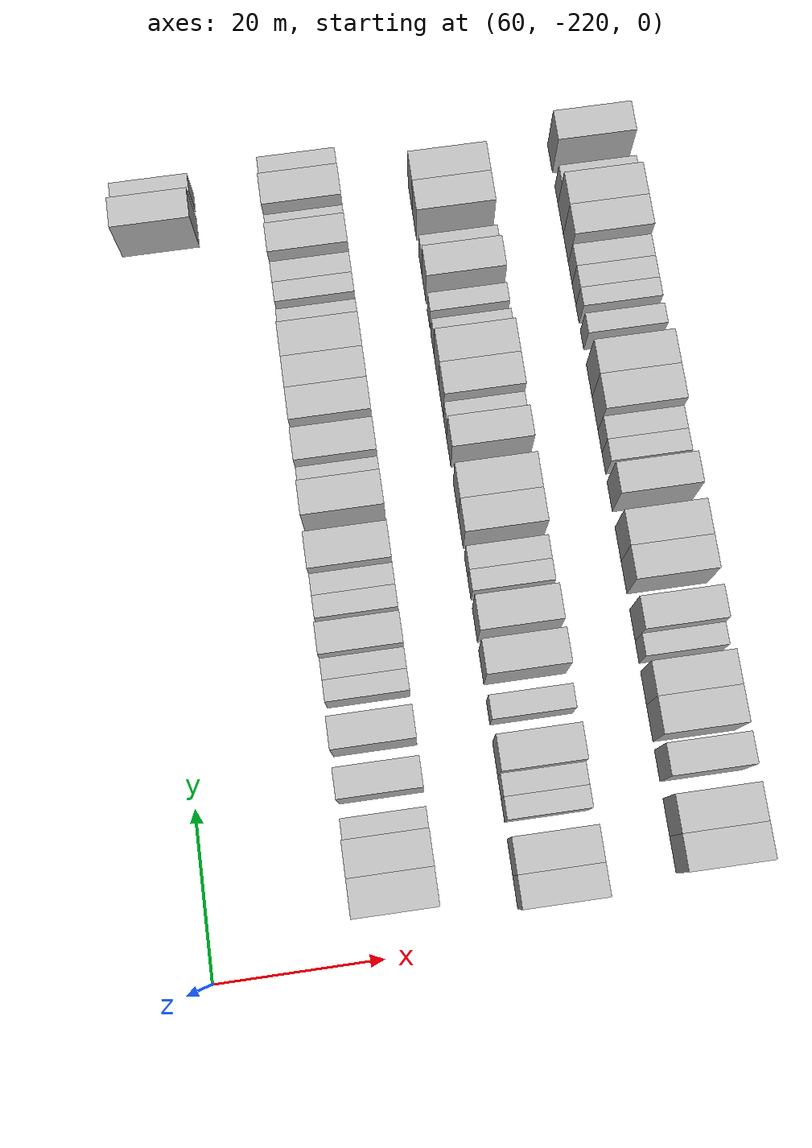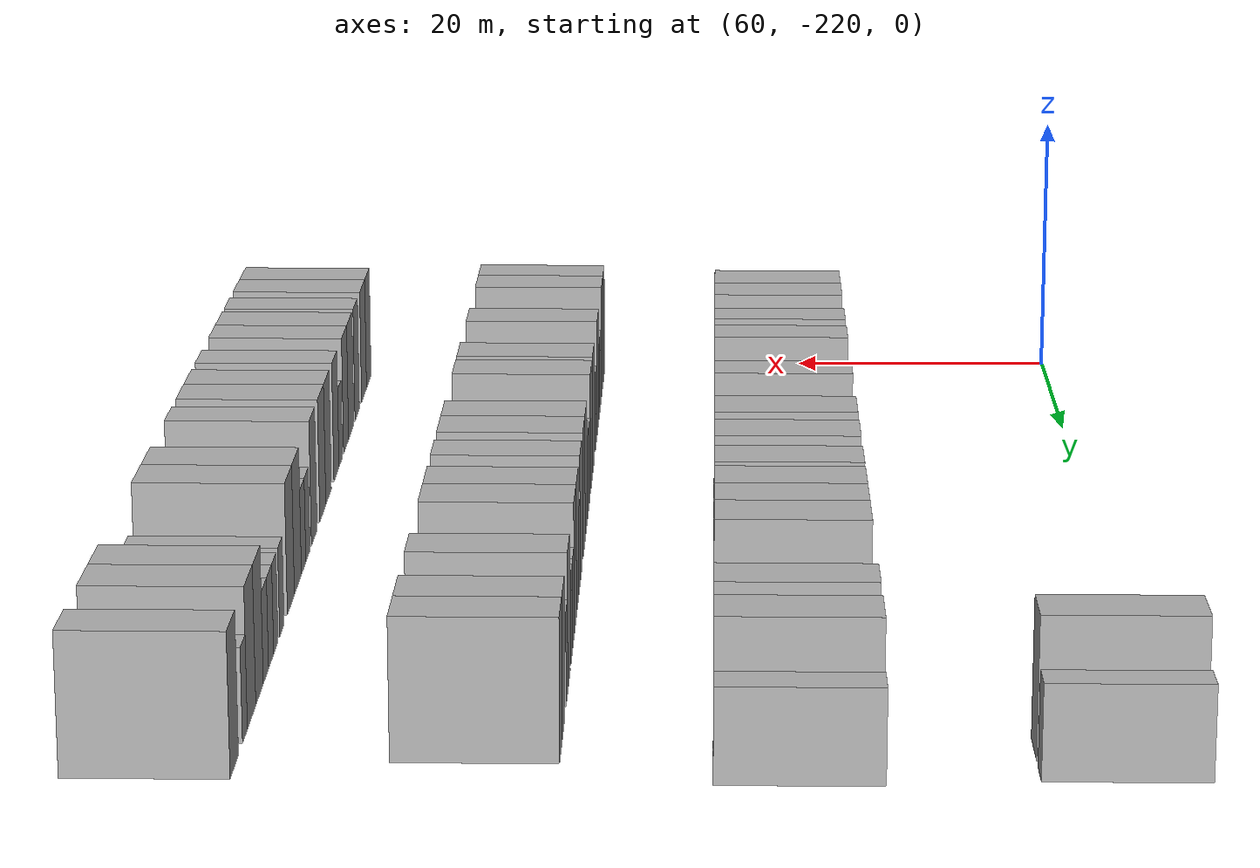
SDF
<sdf version="1.6">
 <world name="default">
  <model name="building_406">
   <static>1</static>
   <pose>63.0000 -126.7077 0 0.000000 0.000000 0.000000</pose>
   <link name="link">
    <pose>0 0 4.50 0 0 0</pose>
    <collision name="collision"><geometry><box><size>10.0000 4.0120 9.0000</size></box></geometry></collision>
    <visual name="visual">
     <cast_shadows>0</cast_shadows>
     <geometry><box><size>10.0000 4.0120 9.0000</size></box></geometry>
     <material>
      <script>
       <uri>model://HANNAS_wall/materials/scripts</uri>
       <uri>model://HANNAS_wall/materials/textures</uri>
       <name>vrc/HANNAS_wall</name>
      </script>
     </material>
    </visual>
   </link>
  </model>
  <model name="building_407">
   <static>1</static>
   <pose>63.0000 -122.4582 0 0.000000 0.000000 0.000000</pose>
   <link name="link">
    <pose>0 0 3.00 0 0 0</pose>
    <collision name="collision"><geometry><box><size>10.0000 2.4870 6.0000</size></box></geometry></collision>
    <visual name="visual">
     <cast_shadows>0</cast_shadows>
     <geometry><box><size>10.0000 2.4870 6.0000</size></box></geometry>
     <material>
      <script>
       <uri>model://HANNAS_wall/materials/scripts</uri>
       <uri>model://HANNAS_wall/materials/textures</uri>
       <name>vrc/HANNAS_wall</name>
      </script>
     </material>
    </visual>
   </link>
  </model>
  <model name="building_562">
   <static>1</static>
   <pose>82.0000 -212.7200 0 0.000000 0.000000 0.000000</pose>
   <link name="link">
    <pose>0 0 4.50 0 0 0</pose>
    <collision name="collision"><geometry><box><size>10.0000 4.4209 9.0000</size></box></geometry></collision>
    <visual name="visual">
     <cast_shadows>0</cast_shadows>
     <geometry><box><size>10.0000 4.4209 9.0000</size></box></geometry>
     <material>
      <script>
       <uri>model://HANNAS_wall/materials/scripts</uri>
       <uri>model://HANNAS_wall/materials/textures</uri>
       <name>vrc/HANNAS_wall</name>
      </script>
     </material>
    </visual>
   </link>
  </model>
  <model name="building_563">
   <static>1</static>
   <pose>82.0000 -208.3890 0 0.000000 0.000000 0.000000</pose>
   <link name="link">
    <pose>0 0 4.50 0 0 0</pose>
    <collision name="collision"><geometry><box><size>10.0000 4.2413 9.0000</size></box></geometry></collision>
    <visual name="visual">
     <cast_shadows>0</cast_shadows>
     <geometry><box><size>10.0000 4.2413 9.0000</size></box></geometry>
     <material>
      <script>
       <uri>model://HANNAS_wall/materials/scripts</uri>
       <uri>model://HANNAS_wall/materials/textures</uri>
       <name>vrc/HANNAS_wall</name>
      </script>
     </material>
    </visual>
   </link>
  </model>
  <model name="building_564">
   <static>1</static>
   <pose>82.0000 -205.0144 0 0.000000 0.000000 0.000000</pose>
   <link name="link">
    <pose>0 0 3.00 0 0 0</pose>
    <collision name="collision"><geometry><box><size>10.0000 2.5079 6.0000</size></box></geometry></collision>
    <visual name="visual">
     <cast_shadows>0</cast_shadows>
     <geometry><box><size>10.0000 2.5079 6.0000</size></box></geometry>
     <material>
      <script>
       <uri>model://HANNAS_wall/materials/scripts</uri>
       <uri>model://HANNAS_wall/materials/textures</uri>
       <name>vrc/HANNAS_wall</name>
      </script>
     </material>
    </visual>
   </link>
  </model>
  <model name="building_565">
   <static>1</static>
   <pose>82.0000 -199.9602 0 0.000000 0.000000 0.000000</pose>
   <link name="link">
    <pose>0 0 4.50 0 0 0</pose>
    <collision name="collision"><geometry><box><size>10.0000 3.6005 9.0000</size></box></geometry></collision>
    <visual name="visual">
     <cast_shadows>0</cast_shadows>
     <geometry><box><size>10.0000 3.6005 9.0000</size></box></geometry>
     <material>
      <script>
       <uri>model://HANNAS_wall/materials/scripts</uri>
       <uri>model://HANNAS_wall/materials/textures</uri>
       <name>vrc/HANNAS_wall</name>
      </script>
     </material>
    </visual>
   </link>
  </model>
  <model name="building_566">
   <static>1</static>
   <pose>82.0000 -194.2334 0 0.000000 0.000000 0.000000</pose>
   <link name="link">
    <pose>0 0 4.50 0 0 0</pose>
    <collision name="collision"><geometry><box><size>10.0000 3.8530 9.0000</size></box></geometry></collision>
    <visual name="visual">
     <cast_shadows>0</cast_shadows>
     <geometry><box><size>10.0000 3.8530 9.0000</size></box></geometry>
     <material>
      <script>
       <uri>model://HANNAS_wall/materials/scripts</uri>
       <uri>model://HANNAS_wall/materials/textures</uri>
       <name>vrc/HANNAS_wall</name>
      </script>
     </material>
    </visual>
   </link>
  </model>
  <model name="building_567">
   <static>1</static>
   <pose>82.0000 -189.0072 0 0.000000 0.000000 0.000000</pose>
   <link name="link">
    <pose>0 0 3.00 0 0 0</pose>
    <collision name="collision"><geometry><box><size>10.0000 2.5993 6.0000</size></box></geometry></collision>
    <visual name="visual">
     <cast_shadows>0</cast_shadows>
     <geometry><box><size>10.0000 2.5993 6.0000</size></box></geometry>
     <material>
      <script>
       <uri>model://HANNAS_wall/materials/scripts</uri>
       <uri>model://HANNAS_wall/materials/textures</uri>
       <name>vrc/HANNAS_wall</name>
      </script>
     </material>
    </visual>
   </link>
  </model>
  <model name="building_568">
   <static>1</static>
   <pose>82.0000 -186.4210 0 0.000000 0.000000 0.000000</pose>
   <link name="link">
    <pose>0 0 3.00 0 0 0</pose>
    <collision name="collision"><geometry><box><size>10.0000 2.5731 6.0000</size></box></geometry></collision>
    <visual name="visual">
     <cast_shadows>0</cast_shadows>
     <geometry><box><size>10.0000 2.5731 6.0000</size></box></geometry>
     <material>
      <script>
       <uri>model://HANNAS_wall/materials/scripts</uri>
       <uri>model://HANNAS_wall/materials/textures</uri>
       <name>vrc/HANNAS_wall</name>
      </script>
     </material>
    </visual>
   </link>
  </model>
  <model name="building_569">
   <static>1</static>
   <pose>82.0000 -183.2284 0 0.000000 0.000000 0.000000</pose>
   <link name="link">
    <pose>0 0 4.50 0 0 0</pose>
    <collision name="collision"><geometry><box><size>10.0000 3.8121 9.0000</size></box></geometry></collision>
    <visual name="visual">
     <cast_shadows>0</cast_shadows>
     <geometry><box><size>10.0000 3.8121 9.0000</size></box></geometry>
     <material>
      <script>
       <uri>model://HANNAS_wall/materials/scripts</uri>
       <uri>model://HANNAS_wall/materials/textures</uri>
       <name>vrc/HANNAS_wall</name>
      </script>
     </material>
    </visual>
   </link>
  </model>
  <model name="building_570">
   <static>1</static>
   <pose>82.0000 -178.9424 0 0.000000 0.000000 0.000000</pose>
   <link name="link">
    <pose>0 0 3.00 0 0 0</pose>
    <collision name="collision"><geometry><box><size>10.0000 2.7598 6.0000</size></box></geometry></collision>
    <visual name="visual">
     <cast_shadows>0</cast_shadows>
     <geometry><box><size>10.0000 2.7598 6.0000</size></box></geometry>
     <material>
      <script>
       <uri>model://HANNAS_wall/materials/scripts</uri>
       <uri>model://HANNAS_wall/materials/textures</uri>
       <name>vrc/HANNAS_wall</name>
      </script>
     </material>
    </visual>
   </link>
  </model>
  <model name="building_571">
   <static>1</static>
   <pose>82.0000 -176.2389 0 0.000000 0.000000 0.000000</pose>
   <link name="link">
    <pose>0 0 3.00 0 0 0</pose>
    <collision name="collision"><geometry><box><size>10.0000 2.6472 6.0000</size></box></geometry></collision>
    <visual name="visual">
     <cast_shadows>0</cast_shadows>
     <geometry><box><size>10.0000 2.6472 6.0000</size></box></geometry>
     <material>
      <script>
       <uri>model://HANNAS_wall/materials/scripts</uri>
       <uri>model://HANNAS_wall/materials/textures</uri>
       <name>vrc/HANNAS_wall</name>
      </script>
     </material>
    </visual>
   </link>
  </model>
  <model name="building_572">
   <static>1</static>
   <pose>82.0000 -172.6708 0 0.000000 0.000000 0.000000</pose>
   <link name="link">
    <pose>0 0 4.50 0 0 0</pose>
    <collision name="collision"><geometry><box><size>10.0000 4.4890 9.0000</size></box></geometry></collision>
    <visual name="visual">
     <cast_shadows>0</cast_shadows>
     <geometry><box><size>10.0000 4.4890 9.0000</size></box></geometry>
     <material>
      <script>
       <uri>model://HANNAS_wall/materials/scripts</uri>
       <uri>model://HANNAS_wall/materials/textures</uri>
       <name>vrc/HANNAS_wall</name>
      </script>
     </material>
    </visual>
   </link>
  </model>
  <model name="building_573">
   <static>1</static>
   <pose>82.0000 -166.2780 0 0.000000 0.000000 0.000000</pose>
   <link name="link">
    <pose>0 0 4.50 0 0 0</pose>
    <collision name="collision"><geometry><box><size>10.0000 4.2968 9.0000</size></box></geometry></collision>
    <visual name="visual">
     <cast_shadows>0</cast_shadows>
     <geometry><box><size>10.0000 4.2968 9.0000</size></box></geometry>
     <material>
      <script>
       <uri>model://HANNAS_wall/materials/scripts</uri>
       <uri>model://HANNAS_wall/materials/textures</uri>
       <name>vrc/HANNAS_wall</name>
      </script>
     </material>
    </visual>
   </link>
  </model>
  <model name="building_574">
   <static>1</static>
   <pose>82.0000 -162.8849 0 0.000000 0.000000 0.000000</pose>
   <link name="link">
    <pose>0 0 3.00 0 0 0</pose>
    <collision name="collision"><geometry><box><size>10.0000 2.4893 6.0000</size></box></geometry></collision>
    <visual name="visual">
     <cast_shadows>0</cast_shadows>
     <geometry><box><size>10.0000 2.4893 6.0000</size></box></geometry>
     <material>
      <script>
       <uri>model://HANNAS_wall/materials/scripts</uri>
       <uri>model://HANNAS_wall/materials/textures</uri>
       <name>vrc/HANNAS_wall</name>
      </script>
     </material>
    </visual>
   </link>
  </model>
  <model name="building_575">
   <static>1</static>
   <pose>82.0000 -159.5795 0 0.000000 0.000000 0.000000</pose>
   <link name="link">
    <pose>0 0 4.50 0 0 0</pose>
    <collision name="collision"><geometry><box><size>10.0000 4.1216 9.0000</size></box></geometry></collision>
    <visual name="visual">
     <cast_shadows>0</cast_shadows>
     <geometry><box><size>10.0000 4.1216 9.0000</size></box></geometry>
     <material>
      <script>
       <uri>model://HANNAS_wall/materials/scripts</uri>
       <uri>model://HANNAS_wall/materials/textures</uri>
       <name>vrc/HANNAS_wall</name>
      </script>
     </material>
    </visual>
   </link>
  </model>
  <model name="building_576">
   <static>1</static>
   <pose>82.0000 -154.4689 0 0.000000 0.000000 0.000000</pose>
   <link name="link">
    <pose>0 0 4.50 0 0 0</pose>
    <collision name="collision"><geometry><box><size>10.0000 4.0996 9.0000</size></box></geometry></collision>
    <visual name="visual">
     <cast_shadows>0</cast_shadows>
     <geometry><box><size>10.0000 4.0996 9.0000</size></box></geometry>
     <material>
      <script>
       <uri>model://HANNAS_wall/materials/scripts</uri>
       <uri>model://HANNAS_wall/materials/textures</uri>
       <name>vrc/HANNAS_wall</name>
      </script>
     </material>
    </visual>
   </link>
  </model>
  <model name="building_577">
   <static>1</static>
   <pose>82.0000 -150.4197 0 0.000000 0.000000 0.000000</pose>
   <link name="link">
    <pose>0 0 4.50 0 0 0</pose>
    <collision name="collision"><geometry><box><size>10.0000 3.9988 9.0000</size></box></geometry></collision>
    <visual name="visual">
     <cast_shadows>0</cast_shadows>
     <geometry><box><size>10.0000 3.9988 9.0000</size></box></geometry>
     <material>
      <script>
       <uri>model://HANNAS_wall/materials/scripts</uri>
       <uri>model://HANNAS_wall/materials/textures</uri>
       <name>vrc/HANNAS_wall</name>
      </script>
     </material>
    </visual>
   </link>
  </model>
  <model name="building_578">
   <static>1</static>
   <pose>82.0000 -146.1951 0 0.000000 0.000000 0.000000</pose>
   <link name="link">
    <pose>0 0 4.50 0 0 0</pose>
    <collision name="collision"><geometry><box><size>10.0000 4.4504 9.0000</size></box></geometry></collision>
    <visual name="visual">
     <cast_shadows>0</cast_shadows>
     <geometry><box><size>10.0000 4.4504 9.0000</size></box></geometry>
     <material>
      <script>
       <uri>model://HANNAS_wall/materials/scripts</uri>
       <uri>model://HANNAS_wall/materials/textures</uri>
       <name>vrc/HANNAS_wall</name>
      </script>
     </material>
    </visual>
   </link>
  </model>
  <model name="building_579">
   <static>1</static>
   <pose>82.0000 -142.5242 0 0.000000 0.000000 0.000000</pose>
   <link name="link">
    <pose>0 0 3.00 0 0 0</pose>
    <collision name="collision"><geometry><box><size>10.0000 2.8914 6.0000</size></box></geometry></collision>
    <visual name="visual">
     <cast_shadows>0</cast_shadows>
     <geometry><box><size>10.0000 2.8914 6.0000</size></box></geometry>
     <material>
      <script>
       <uri>model://HANNAS_wall/materials/scripts</uri>
       <uri>model://HANNAS_wall/materials/textures</uri>
       <name>vrc/HANNAS_wall</name>
      </script>
     </material>
    </visual>
   </link>
  </model>
  <model name="building_580">
   <static>1</static>
   <pose>82.0000 -138.7613 0 0.000000 0.000000 0.000000</pose>
   <link name="link">
    <pose>0 0 3.00 0 0 0</pose>
    <collision name="collision"><geometry><box><size>10.0000 2.6344 6.0000</size></box></geometry></collision>
    <visual name="visual">
     <cast_shadows>0</cast_shadows>
     <geometry><box><size>10.0000 2.6344 6.0000</size></box></geometry>
     <material>
      <script>
       <uri>model://HANNAS_wall/materials/scripts</uri>
       <uri>model://HANNAS_wall/materials/textures</uri>
       <name>vrc/HANNAS_wall</name>
      </script>
     </material>
    </visual>
   </link>
  </model>
  <model name="building_581">
   <static>1</static>
   <pose>82.0000 -136.0694 0 0.000000 0.000000 0.000000</pose>
   <link name="link">
    <pose>0 0 3.00 0 0 0</pose>
    <collision name="collision"><geometry><box><size>10.0000 2.7492 6.0000</size></box></geometry></collision>
    <visual name="visual">
     <cast_shadows>0</cast_shadows>
     <geometry><box><size>10.0000 2.7492 6.0000</size></box></geometry>
     <material>
      <script>
       <uri>model://HANNAS_wall/materials/scripts</uri>
       <uri>model://HANNAS_wall/materials/textures</uri>
       <name>vrc/HANNAS_wall</name>
      </script>
     </material>
    </visual>
   </link>
  </model>
  <model name="building_582">
   <static>1</static>
   <pose>82.0000 -132.7564 0 0.000000 0.000000 0.000000</pose>
   <link name="link">
    <pose>0 0 4.50 0 0 0</pose>
    <collision name="collision"><geometry><box><size>10.0000 3.8770 9.0000</size></box></geometry></collision>
    <visual name="visual">
     <cast_shadows>0</cast_shadows>
     <geometry><box><size>10.0000 3.8770 9.0000</size></box></geometry>
     <material>
      <script>
       <uri>model://HANNAS_wall/materials/scripts</uri>
       <uri>model://HANNAS_wall/materials/textures</uri>
       <name>vrc/HANNAS_wall</name>
      </script>
     </material>
    </visual>
   </link>
  </model>
  <model name="building_583">
   <static>1</static>
   <pose>82.0000 -129.5489 0 0.000000 0.000000 0.000000</pose>
   <link name="link">
    <pose>0 0 3.00 0 0 0</pose>
    <collision name="collision"><geometry><box><size>10.0000 2.5381 6.0000</size></box></geometry></collision>
    <visual name="visual">
     <cast_shadows>0</cast_shadows>
     <geometry><box><size>10.0000 2.5381 6.0000</size></box></geometry>
     <material>
      <script>
       <uri>model://HANNAS_wall/materials/scripts</uri>
       <uri>model://HANNAS_wall/materials/textures</uri>
       <name>vrc/HANNAS_wall</name>
      </script>
     </material>
    </visual>
   </link>
  </model>
  <model name="building_584">
   <static>1</static>
   <pose>82.0000 -126.1622 0 0.000000 0.000000 0.000000</pose>
   <link name="link">
    <pose>0 0 4.50 0 0 0</pose>
    <collision name="collision"><geometry><box><size>10.0000 4.2352 9.0000</size></box></geometry></collision>
    <visual name="visual">
     <cast_shadows>0</cast_shadows>
     <geometry><box><size>10.0000 4.2352 9.0000</size></box></geometry>
     <material>
      <script>
       <uri>model://HANNAS_wall/materials/scripts</uri>
       <uri>model://HANNAS_wall/materials/textures</uri>
       <name>vrc/HANNAS_wall</name>
      </script>
     </material>
    </visual>
   </link>
  </model>
  <model name="building_585">
   <static>1</static>
   <pose>82.0000 -121.6446 0 0.000000 0.000000 0.000000</pose>
   <link name="link">
    <pose>0 0 3.00 0 0 0</pose>
    <collision name="collision"><geometry><box><size>10.0000 2.8000 6.0000</size></box></geometry></collision>
    <visual name="visual">
     <cast_shadows>0</cast_shadows>
     <geometry><box><size>10.0000 2.8000 6.0000</size></box></geometry>
     <material>
      <script>
       <uri>model://HANNAS_wall/materials/scripts</uri>
       <uri>model://HANNAS_wall/materials/textures</uri>
       <name>vrc/HANNAS_wall</name>
      </script>
     </material>
    </visual>
   </link>
  </model>
  <model name="building_734">
   <static>1</static>
   <pose>101.0000 -214.6702 0 0.000000 0.000000 0.000000</pose>
   <link name="link">
    <pose>0 0 4.50 0 0 0</pose>
    <collision name="collision"><geometry><box><size>10.0000 3.7965 9.0000</size></box></geometry></collision>
    <visual name="visual">
     <cast_shadows>0</cast_shadows>
     <geometry><box><size>10.0000 3.7965 9.0000</size></box></geometry>
     <material>
      <script>
       <uri>model://HANNAS_wall/materials/scripts</uri>
       <uri>model://HANNAS_wall/materials/textures</uri>
       <name>vrc/HANNAS_wall</name>
      </script>
     </material>
    </visual>
   </link>
  </model>
  <model name="building_735">
   <static>1</static>
   <pose>101.0000 -210.6768 0 0.000000 0.000000 0.000000</pose>
   <link name="link">
    <pose>0 0 4.50 0 0 0</pose>
    <collision name="collision"><geometry><box><size>10.0000 4.1903 9.0000</size></box></geometry></collision>
    <visual name="visual">
     <cast_shadows>0</cast_shadows>
     <geometry><box><size>10.0000 4.1903 9.0000</size></box></geometry>
     <material>
      <script>
       <uri>model://HANNAS_wall/materials/scripts</uri>
       <uri>model://HANNAS_wall/materials/textures</uri>
       <name>vrc/HANNAS_wall</name>
      </script>
     </material>
    </visual>
   </link>
  </model>
  <model name="building_736">
   <static>1</static>
   <pose>101.0000 -205.2538 0 0.000000 0.000000 0.000000</pose>
   <link name="link">
    <pose>0 0 3.00 0 0 0</pose>
    <collision name="collision"><geometry><box><size>10.0000 2.6558 6.0000</size></box></geometry></collision>
    <visual name="visual">
     <cast_shadows>0</cast_shadows>
     <geometry><box><size>10.0000 2.6558 6.0000</size></box></geometry>
     <material>
      <script>
       <uri>model://HANNAS_wall/materials/scripts</uri>
       <uri>model://HANNAS_wall/materials/textures</uri>
       <name>vrc/HANNAS_wall</name>
      </script>
     </material>
    </visual>
   </link>
  </model>
  <model name="building_737">
   <static>1</static>
   <pose>101.0000 -202.5906 0 0.000000 0.000000 0.000000</pose>
   <link name="link">
    <pose>0 0 3.00 0 0 0</pose>
    <collision name="collision"><geometry><box><size>10.0000 2.6706 6.0000</size></box></geometry></collision>
    <visual name="visual">
     <cast_shadows>0</cast_shadows>
     <geometry><box><size>10.0000 2.6706 6.0000</size></box></geometry>
     <material>
      <script>
       <uri>model://HANNAS_wall/materials/scripts</uri>
       <uri>model://HANNAS_wall/materials/textures</uri>
       <name>vrc/HANNAS_wall</name>
      </script>
     </material>
    </visual>
   </link>
  </model>
  <model name="building_738">
   <static>1</static>
   <pose>101.0000 -199.1391 0 0.000000 0.000000 0.000000</pose>
   <link name="link">
    <pose>0 0 4.50 0 0 0</pose>
    <collision name="collision"><geometry><box><size>10.0000 4.2324 9.0000</size></box></geometry></collision>
    <visual name="visual">
     <cast_shadows>0</cast_shadows>
     <geometry><box><size>10.0000 4.2324 9.0000</size></box></geometry>
     <material>
      <script>
       <uri>model://HANNAS_wall/materials/scripts</uri>
       <uri>model://HANNAS_wall/materials/textures</uri>
       <name>vrc/HANNAS_wall</name>
      </script>
     </material>
    </visual>
   </link>
  </model>
  <model name="building_739">
   <static>1</static>
   <pose>101.0000 -193.5844 0 0.000000 0.000000 0.000000</pose>
   <link name="link">
    <pose>0 0 3.00 0 0 0</pose>
    <collision name="collision"><geometry><box><size>10.0000 2.8770 6.0000</size></box></geometry></collision>
    <visual name="visual">
     <cast_shadows>0</cast_shadows>
     <geometry><box><size>10.0000 2.8770 6.0000</size></box></geometry>
     <material>
      <script>
       <uri>model://HANNAS_wall/materials/scripts</uri>
       <uri>model://HANNAS_wall/materials/textures</uri>
       <name>vrc/HANNAS_wall</name>
      </script>
     </material>
    </visual>
   </link>
  </model>
  <model name="building_740">
   <static>1</static>
   <pose>101.0000 -188.0484 0 0.000000 0.000000 0.000000</pose>
   <link name="link">
    <pose>0 0 4.50 0 0 0</pose>
    <collision name="collision"><geometry><box><size>10.0000 4.1949 9.0000</size></box></geometry></collision>
    <visual name="visual">
     <cast_shadows>0</cast_shadows>
     <geometry><box><size>10.0000 4.1949 9.0000</size></box></geometry>
     <material>
      <script>
       <uri>model://HANNAS_wall/materials/scripts</uri>
       <uri>model://HANNAS_wall/materials/textures</uri>
       <name>vrc/HANNAS_wall</name>
      </script>
     </material>
    </visual>
   </link>
  </model>
  <model name="building_741">
   <static>1</static>
   <pose>101.0000 -182.8255 0 0.000000 0.000000 0.000000</pose>
   <link name="link">
    <pose>0 0 4.50 0 0 0</pose>
    <collision name="collision"><geometry><box><size>10.0000 4.2509 9.0000</size></box></geometry></collision>
    <visual name="visual">
     <cast_shadows>0</cast_shadows>
     <geometry><box><size>10.0000 4.2509 9.0000</size></box></geometry>
     <material>
      <script>
       <uri>model://HANNAS_wall/materials/scripts</uri>
       <uri>model://HANNAS_wall/materials/textures</uri>
       <name>vrc/HANNAS_wall</name>
      </script>
     </material>
    </visual>
   </link>
  </model>
  <model name="building_742">
   <static>1</static>
   <pose>101.0000 -178.3840 0 0.000000 0.000000 0.000000</pose>
   <link name="link">
    <pose>0 0 3.00 0 0 0</pose>
    <collision name="collision"><geometry><box><size>10.0000 2.6322 6.0000</size></box></geometry></collision>
    <visual name="visual">
     <cast_shadows>0</cast_shadows>
     <geometry><box><size>10.0000 2.6322 6.0000</size></box></geometry>
     <material>
      <script>
       <uri>model://HANNAS_wall/materials/scripts</uri>
       <uri>model://HANNAS_wall/materials/textures</uri>
       <name>vrc/HANNAS_wall</name>
      </script>
     </material>
    </visual>
   </link>
  </model>
  <model name="building_743">
   <static>1</static>
   <pose>101.0000 -175.6055 0 0.000000 0.000000 0.000000</pose>
   <link name="link">
    <pose>0 0 3.00 0 0 0</pose>
    <collision name="collision"><geometry><box><size>10.0000 2.9248 6.0000</size></box></geometry></collision>
    <visual name="visual">
     <cast_shadows>0</cast_shadows>
     <geometry><box><size>10.0000 2.9248 6.0000</size></box></geometry>
     <material>
      <script>
       <uri>model://HANNAS_wall/materials/scripts</uri>
       <uri>model://HANNAS_wall/materials/textures</uri>
       <name>vrc/HANNAS_wall</name>
      </script>
     </material>
    </visual>
   </link>
  </model>
  <model name="building_744">
   <static>1</static>
   <pose>101.0000 -171.0790 0 0.000000 0.000000 0.000000</pose>
   <link name="link">
    <pose>0 0 4.50 0 0 0</pose>
    <collision name="collision"><geometry><box><size>10.0000 4.1282 9.0000</size></box></geometry></collision>
    <visual name="visual">
     <cast_shadows>0</cast_shadows>
     <geometry><box><size>10.0000 4.1282 9.0000</size></box></geometry>
     <material>
      <script>
       <uri>model://HANNAS_wall/materials/scripts</uri>
       <uri>model://HANNAS_wall/materials/textures</uri>
       <name>vrc/HANNAS_wall</name>
      </script>
     </material>
    </visual>
   </link>
  </model>
  <model name="building_745">
   <static>1</static>
   <pose>101.0000 -166.8086 0 0.000000 0.000000 0.000000</pose>
   <link name="link">
    <pose>0 0 4.50 0 0 0</pose>
    <collision name="collision"><geometry><box><size>10.0000 4.4127 9.0000</size></box></geometry></collision>
    <visual name="visual">
     <cast_shadows>0</cast_shadows>
     <geometry><box><size>10.0000 4.4127 9.0000</size></box></geometry>
     <material>
      <script>
       <uri>model://HANNAS_wall/materials/scripts</uri>
       <uri>model://HANNAS_wall/materials/textures</uri>
       <name>vrc/HANNAS_wall</name>
      </script>
     </material>
    </visual>
   </link>
  </model>
  <model name="building_746">
   <static>1</static>
   <pose>101.0000 -160.6691 0 0.000000 0.000000 0.000000</pose>
   <link name="link">
    <pose>0 0 4.50 0 0 0</pose>
    <collision name="collision"><geometry><box><size>10.0000 3.8662 9.0000</size></box></geometry></collision>
    <visual name="visual">
     <cast_shadows>0</cast_shadows>
     <geometry><box><size>10.0000 3.8662 9.0000</size></box></geometry>
     <material>
      <script>
       <uri>model://HANNAS_wall/materials/scripts</uri>
       <uri>model://HANNAS_wall/materials/textures</uri>
       <name>vrc/HANNAS_wall</name>
      </script>
     </material>
    </visual>
   </link>
  </model>
  <model name="building_747">
   <static>1</static>
   <pose>101.0000 -157.3511 0 0.000000 0.000000 0.000000</pose>
   <link name="link">
    <pose>0 0 3.00 0 0 0</pose>
    <collision name="collision"><geometry><box><size>10.0000 2.7699 6.0000</size></box></geometry></collision>
    <visual name="visual">
     <cast_shadows>0</cast_shadows>
     <geometry><box><size>10.0000 2.7699 6.0000</size></box></geometry>
     <material>
      <script>
       <uri>model://HANNAS_wall/materials/scripts</uri>
       <uri>model://HANNAS_wall/materials/textures</uri>
       <name>vrc/HANNAS_wall</name>
      </script>
     </material>
    </visual>
   </link>
  </model>
  <model name="building_748">
   <static>1</static>
   <pose>101.0000 -153.8959 0 0.000000 0.000000 0.000000</pose>
   <link name="link">
    <pose>0 0 4.50 0 0 0</pose>
    <collision name="collision"><geometry><box><size>10.0000 4.1406 9.0000</size></box></geometry></collision>
    <visual name="visual">
     <cast_shadows>0</cast_shadows>
     <geometry><box><size>10.0000 4.1406 9.0000</size></box></geometry>
     <material>
      <script>
       <uri>model://HANNAS_wall/materials/scripts</uri>
       <uri>model://HANNAS_wall/materials/textures</uri>
       <name>vrc/HANNAS_wall</name>
      </script>
     </material>
    </visual>
   </link>
  </model>
  <model name="building_749">
   <static>1</static>
   <pose>101.0000 -149.6679 0 0.000000 0.000000 0.000000</pose>
   <link name="link">
    <pose>0 0 4.50 0 0 0</pose>
    <collision name="collision"><geometry><box><size>10.0000 4.3153 9.0000</size></box></geometry></collision>
    <visual name="visual">
     <cast_shadows>0</cast_shadows>
     <geometry><box><size>10.0000 4.3153 9.0000</size></box></geometry>
     <material>
      <script>
       <uri>model://HANNAS_wall/materials/scripts</uri>
       <uri>model://HANNAS_wall/materials/textures</uri>
       <name>vrc/HANNAS_wall</name>
      </script>
     </material>
    </visual>
   </link>
  </model>
  <model name="building_750">
   <static>1</static>
   <pose>101.0000 -146.2697 0 0.000000 0.000000 0.000000</pose>
   <link name="link">
    <pose>0 0 3.00 0 0 0</pose>
    <collision name="collision"><geometry><box><size>10.0000 2.4810 6.0000</size></box></geometry></collision>
    <visual name="visual">
     <cast_shadows>0</cast_shadows>
     <geometry><box><size>10.0000 2.4810 6.0000</size></box></geometry>
     <material>
      <script>
       <uri>model://HANNAS_wall/materials/scripts</uri>
       <uri>model://HANNAS_wall/materials/textures</uri>
       <name>vrc/HANNAS_wall</name>
      </script>
     </material>
    </visual>
   </link>
  </model>
  <model name="building_751">
   <static>1</static>
   <pose>101.0000 -142.7936 0 0.000000 0.000000 0.000000</pose>
   <link name="link">
    <pose>0 0 3.00 0 0 0</pose>
    <collision name="collision"><geometry><box><size>10.0000 2.4713 6.0000</size></box></geometry></collision>
    <visual name="visual">
     <cast_shadows>0</cast_shadows>
     <geometry><box><size>10.0000 2.4713 6.0000</size></box></geometry>
     <material>
      <script>
       <uri>model://HANNAS_wall/materials/scripts</uri>
       <uri>model://HANNAS_wall/materials/textures</uri>
       <name>vrc/HANNAS_wall</name>
      </script>
     </material>
    </visual>
   </link>
  </model>
  <model name="building_752">
   <static>1</static>
   <pose>101.0000 -138.5419 0 0.000000 0.000000 0.000000</pose>
   <link name="link">
    <pose>0 0 4.50 0 0 0</pose>
    <collision name="collision"><geometry><box><size>10.0000 4.0320 9.0000</size></box></geometry></collision>
    <visual name="visual">
     <cast_shadows>0</cast_shadows>
     <geometry><box><size>10.0000 4.0320 9.0000</size></box></geometry>
     <material>
      <script>
       <uri>model://HANNAS_wall/materials/scripts</uri>
       <uri>model://HANNAS_wall/materials/textures</uri>
       <name>vrc/HANNAS_wall</name>
      </script>
     </material>
    </visual>
   </link>
  </model>
  <model name="building_753">
   <static>1</static>
   <pose>101.0000 -135.1259 0 0.000000 0.000000 0.000000</pose>
   <link name="link">
    <pose>0 0 3.00 0 0 0</pose>
    <collision name="collision"><geometry><box><size>10.0000 2.8001 6.0000</size></box></geometry></collision>
    <visual name="visual">
     <cast_shadows>0</cast_shadows>
     <geometry><box><size>10.0000 2.8001 6.0000</size></box></geometry>
     <material>
      <script>
       <uri>model://HANNAS_wall/materials/scripts</uri>
       <uri>model://HANNAS_wall/materials/textures</uri>
       <name>vrc/HANNAS_wall</name>
      </script>
     </material>
    </visual>
   </link>
  </model>
  <model name="building_754">
   <static>1</static>
   <pose>101.0000 -129.6893 0 0.000000 0.000000 0.000000</pose>
   <link name="link">
    <pose>0 0 4.50 0 0 0</pose>
    <collision name="collision"><geometry><box><size>10.0000 4.0731 9.0000</size></box></geometry></collision>
    <visual name="visual">
     <cast_shadows>0</cast_shadows>
     <geometry><box><size>10.0000 4.0731 9.0000</size></box></geometry>
     <material>
      <script>
       <uri>model://HANNAS_wall/materials/scripts</uri>
       <uri>model://HANNAS_wall/materials/textures</uri>
       <name>vrc/HANNAS_wall</name>
      </script>
     </material>
    </visual>
   </link>
  </model>
  <model name="building_755">
   <static>1</static>
   <pose>101.0000 -125.6631 0 0.000000 0.000000 0.000000</pose>
   <link name="link">
    <pose>0 0 4.50 0 0 0</pose>
    <collision name="collision"><geometry><box><size>10.0000 3.9792 9.0000</size></box></geometry></collision>
    <visual name="visual">
     <cast_shadows>0</cast_shadows>
     <geometry><box><size>10.0000 3.9792 9.0000</size></box></geometry>
     <material>
      <script>
       <uri>model://HANNAS_wall/materials/scripts</uri>
       <uri>model://HANNAS_wall/materials/textures</uri>
       <name>vrc/HANNAS_wall</name>
      </script>
     </material>
    </visual>
   </link>
  </model>
  <model name="building_918">
   <static>1</static>
   <pose>120.0000 -213.0208 0 0.000000 0.000000 0.000000</pose>
   <link name="link">
    <pose>0 0 4.50 0 0 0</pose>
    <collision name="collision"><geometry><box><size>10.0000 4.2558 9.0000</size></box></geometry></collision>
    <visual name="visual">
     <cast_shadows>0</cast_shadows>
     <geometry><box><size>10.0000 4.2558 9.0000</size></box></geometry>
     <material>
      <script>
       <uri>model://HANNAS_wall/materials/scripts</uri>
       <uri>model://HANNAS_wall/materials/textures</uri>
       <name>vrc/HANNAS_wall</name>
      </script>
     </material>
    </visual>
   </link>
  </model>
  <model name="building_919">
   <static>1</static>
   <pose>120.0000 -208.6820 0 0.000000 0.000000 0.000000</pose>
   <link name="link">
    <pose>0 0 4.50 0 0 0</pose>
    <collision name="collision"><geometry><box><size>10.0000 4.4218 9.0000</size></box></geometry></collision>
    <visual name="visual">
     <cast_shadows>0</cast_shadows>
     <geometry><box><size>10.0000 4.4218 9.0000</size></box></geometry>
     <material>
      <script>
       <uri>model://HANNAS_wall/materials/scripts</uri>
       <uri>model://HANNAS_wall/materials/textures</uri>
       <name>vrc/HANNAS_wall</name>
      </script>
     </material>
    </visual>
   </link>
  </model>
  <model name="building_920">
   <static>1</static>
   <pose>120.0000 -202.5914 0 0.000000 0.000000 0.000000</pose>
   <link name="link">
    <pose>0 0 4.50 0 0 0</pose>
    <collision name="collision"><geometry><box><size>10.0000 3.7595 9.0000</size></box></geometry></collision>
    <visual name="visual">
     <cast_shadows>0</cast_shadows>
     <geometry><box><size>10.0000 3.7595 9.0000</size></box></geometry>
     <material>
      <script>
       <uri>model://HANNAS_wall/materials/scripts</uri>
       <uri>model://HANNAS_wall/materials/textures</uri>
       <name>vrc/HANNAS_wall</name>
      </script>
     </material>
    </visual>
   </link>
  </model>
  <model name="building_921">
   <static>1</static>
   <pose>120.0000 -197.5109 0 0.000000 0.000000 0.000000</pose>
   <link name="link">
    <pose>0 0 4.50 0 0 0</pose>
    <collision name="collision"><geometry><box><size>10.0000 4.4015 9.0000</size></box></geometry></collision>
    <visual name="visual">
     <cast_shadows>0</cast_shadows>
     <geometry><box><size>10.0000 4.4015 9.0000</size></box></geometry>
     <material>
      <script>
       <uri>model://HANNAS_wall/materials/scripts</uri>
       <uri>model://HANNAS_wall/materials/textures</uri>
       <name>vrc/HANNAS_wall</name>
      </script>
     </material>
    </visual>
   </link>
  </model>
  <model name="building_922">
   <static>1</static>
   <pose>120.0000 -193.2565 0 0.000000 0.000000 0.000000</pose>
   <link name="link">
    <pose>0 0 4.50 0 0 0</pose>
    <collision name="collision"><geometry><box><size>10.0000 4.1073 9.0000</size></box></geometry></collision>
    <visual name="visual">
     <cast_shadows>0</cast_shadows>
     <geometry><box><size>10.0000 4.1073 9.0000</size></box></geometry>
     <material>
      <script>
       <uri>model://HANNAS_wall/materials/scripts</uri>
       <uri>model://HANNAS_wall/materials/textures</uri>
       <name>vrc/HANNAS_wall</name>
      </script>
     </material>
    </visual>
   </link>
  </model>
  <model name="building_923">
   <static>1</static>
   <pose>120.0000 -188.8424 0 0.000000 0.000000 0.000000</pose>
   <link name="link">
    <pose>0 0 3.00 0 0 0</pose>
    <collision name="collision"><geometry><box><size>10.0000 2.7208 6.0000</size></box></geometry></collision>
    <visual name="visual">
     <cast_shadows>0</cast_shadows>
     <geometry><box><size>10.0000 2.7208 6.0000</size></box></geometry>
     <material>
      <script>
       <uri>model://HANNAS_wall/materials/scripts</uri>
       <uri>model://HANNAS_wall/materials/textures</uri>
       <name>vrc/HANNAS_wall</name>
      </script>
     </material>
    </visual>
   </link>
  </model>
  <model name="building_924">
   <static>1</static>
   <pose>120.0000 -185.5178 0 0.000000 0.000000 0.000000</pose>
   <link name="link">
    <pose>0 0 4.50 0 0 0</pose>
    <collision name="collision"><geometry><box><size>10.0000 3.9285 9.0000</size></box></geometry></collision>
    <visual name="visual">
     <cast_shadows>0</cast_shadows>
     <geometry><box><size>10.0000 3.9285 9.0000</size></box></geometry>
     <material>
      <script>
       <uri>model://HANNAS_wall/materials/scripts</uri>
       <uri>model://HANNAS_wall/materials/textures</uri>
       <name>vrc/HANNAS_wall</name>
      </script>
     </material>
    </visual>
   </link>
  </model>
  <model name="building_925">
   <static>1</static>
   <pose>120.0000 -179.5003 0 0.000000 0.000000 0.000000</pose>
   <link name="link">
    <pose>0 0 4.50 0 0 0</pose>
    <collision name="collision"><geometry><box><size>10.0000 4.1065 9.0000</size></box></geometry></collision>
    <visual name="visual">
     <cast_shadows>0</cast_shadows>
     <geometry><box><size>10.0000 4.1065 9.0000</size></box></geometry>
     <material>
      <script>
       <uri>model://HANNAS_wall/materials/scripts</uri>
       <uri>model://HANNAS_wall/materials/textures</uri>
       <name>vrc/HANNAS_wall</name>
      </script>
     </material>
    </visual>
   </link>
  </model>
  <model name="building_926">
   <static>1</static>
   <pose>120.0000 -175.2663 0 0.000000 0.000000 0.000000</pose>
   <link name="link">
    <pose>0 0 4.50 0 0 0</pose>
    <collision name="collision"><geometry><box><size>10.0000 4.3615 9.0000</size></box></geometry></collision>
    <visual name="visual">
     <cast_shadows>0</cast_shadows>
     <geometry><box><size>10.0000 4.3615 9.0000</size></box></geometry>
     <material>
      <script>
       <uri>model://HANNAS_wall/materials/scripts</uri>
       <uri>model://HANNAS_wall/materials/textures</uri>
       <name>vrc/HANNAS_wall</name>
      </script>
     </material>
    </visual>
   </link>
  </model>
  <model name="building_927">
   <static>1</static>
   <pose>120.0000 -169.1444 0 0.000000 0.000000 0.000000</pose>
   <link name="link">
    <pose>0 0 4.50 0 0 0</pose>
    <collision name="collision"><geometry><box><size>10.0000 3.8824 9.0000</size></box></geometry></collision>
    <visual name="visual">
     <cast_shadows>0</cast_shadows>
     <geometry><box><size>10.0000 3.8824 9.0000</size></box></geometry>
     <material>
      <script>
       <uri>model://HANNAS_wall/materials/scripts</uri>
       <uri>model://HANNAS_wall/materials/textures</uri>
       <name>vrc/HANNAS_wall</name>
      </script>
     </material>
    </visual>
   </link>
  </model>
  <model name="building_928">
   <static>1</static>
   <pose>120.0000 -164.8054 0 0.000000 0.000000 0.000000</pose>
   <link name="link">
    <pose>0 0 3.00 0 0 0</pose>
    <collision name="collision"><geometry><box><size>10.0000 2.7955 6.0000</size></box></geometry></collision>
    <visual name="visual">
     <cast_shadows>0</cast_shadows>
     <geometry><box><size>10.0000 2.7955 6.0000</size></box></geometry>
     <material>
      <script>
       <uri>model://HANNAS_wall/materials/scripts</uri>
       <uri>model://HANNAS_wall/materials/textures</uri>
       <name>vrc/HANNAS_wall</name>
      </script>
     </material>
    </visual>
   </link>
  </model>
  <model name="building_929">
   <static>1</static>
   <pose>120.0000 -161.9409 0 0.000000 0.000000 0.000000</pose>
   <link name="link">
    <pose>0 0 3.00 0 0 0</pose>
    <collision name="collision"><geometry><box><size>10.0000 2.9336 6.0000</size></box></geometry></collision>
    <visual name="visual">
     <cast_shadows>0</cast_shadows>
     <geometry><box><size>10.0000 2.9336 6.0000</size></box></geometry>
     <material>
      <script>
       <uri>model://HANNAS_wall/materials/scripts</uri>
       <uri>model://HANNAS_wall/materials/textures</uri>
       <name>vrc/HANNAS_wall</name>
      </script>
     </material>
    </visual>
   </link>
  </model>
  <model name="building_930">
   <static>1</static>
   <pose>120.0000 -158.2359 0 0.000000 0.000000 0.000000</pose>
   <link name="link">
    <pose>0 0 4.50 0 0 0</pose>
    <collision name="collision"><geometry><box><size>10.0000 4.4764 9.0000</size></box></geometry></collision>
    <visual name="visual">
     <cast_shadows>0</cast_shadows>
     <geometry><box><size>10.0000 4.4764 9.0000</size></box></geometry>
     <material>
      <script>
       <uri>model://HANNAS_wall/materials/scripts</uri>
       <uri>model://HANNAS_wall/materials/textures</uri>
       <name>vrc/HANNAS_wall</name>
      </script>
     </material>
    </visual>
   </link>
  </model>
  <model name="building_931">
   <static>1</static>
   <pose>120.0000 -153.7943 0 0.000000 0.000000 0.000000</pose>
   <link name="link">
    <pose>0 0 4.50 0 0 0</pose>
    <collision name="collision"><geometry><box><size>10.0000 4.4067 9.0000</size></box></geometry></collision>
    <visual name="visual">
     <cast_shadows>0</cast_shadows>
     <geometry><box><size>10.0000 4.4067 9.0000</size></box></geometry>
     <material>
      <script>
       <uri>model://HANNAS_wall/materials/scripts</uri>
       <uri>model://HANNAS_wall/materials/textures</uri>
       <name>vrc/HANNAS_wall</name>
      </script>
     </material>
    </visual>
   </link>
  </model>
  <model name="building_932">
   <static>1</static>
   <pose>120.0000 -148.2813 0 0.000000 0.000000 0.000000</pose>
   <link name="link">
    <pose>0 0 3.00 0 0 0</pose>
    <collision name="collision"><geometry><box><size>10.0000 2.6195 6.0000</size></box></geometry></collision>
    <visual name="visual">
     <cast_shadows>0</cast_shadows>
     <geometry><box><size>10.0000 2.6195 6.0000</size></box></geometry>
     <material>
      <script>
       <uri>model://HANNAS_wall/materials/scripts</uri>
       <uri>model://HANNAS_wall/materials/textures</uri>
       <name>vrc/HANNAS_wall</name>
      </script>
     </material>
    </visual>
   </link>
  </model>
  <model name="building_933">
   <static>1</static>
   <pose>120.0000 -144.7338 0 0.000000 0.000000 0.000000</pose>
   <link name="link">
    <pose>0 0 3.00 0 0 0</pose>
    <collision name="collision"><geometry><box><size>10.0000 2.4756 6.0000</size></box></geometry></collision>
    <visual name="visual">
     <cast_shadows>0</cast_shadows>
     <geometry><box><size>10.0000 2.4756 6.0000</size></box></geometry>
     <material>
      <script>
       <uri>model://HANNAS_wall/materials/scripts</uri>
       <uri>model://HANNAS_wall/materials/textures</uri>
       <name>vrc/HANNAS_wall</name>
      </script>
     </material>
    </visual>
   </link>
  </model>
  <model name="building_934">
   <static>1</static>
   <pose>120.0000 -142.0354 0 0.000000 0.000000 0.000000</pose>
   <link name="link">
    <pose>0 0 3.00 0 0 0</pose>
    <collision name="collision"><geometry><box><size>10.0000 2.9211 6.0000</size></box></geometry></collision>
    <visual name="visual">
     <cast_shadows>0</cast_shadows>
     <geometry><box><size>10.0000 2.9211 6.0000</size></box></geometry>
     <material>
      <script>
       <uri>model://HANNAS_wall/materials/scripts</uri>
       <uri>model://HANNAS_wall/materials/textures</uri>
       <name>vrc/HANNAS_wall</name>
      </script>
     </material>
    </visual>
   </link>
  </model>
  <model name="building_935">
   <static>1</static>
   <pose>120.0000 -139.1087 0 0.000000 0.000000 0.000000</pose>
   <link name="link">
    <pose>0 0 3.00 0 0 0</pose>
    <collision name="collision"><geometry><box><size>10.0000 2.9323 6.0000</size></box></geometry></collision>
    <visual name="visual">
     <cast_shadows>0</cast_shadows>
     <geometry><box><size>10.0000 2.9323 6.0000</size></box></geometry>
     <material>
      <script>
       <uri>model://HANNAS_wall/materials/scripts</uri>
       <uri>model://HANNAS_wall/materials/textures</uri>
       <name>vrc/HANNAS_wall</name>
      </script>
     </material>
    </visual>
   </link>
  </model>
  <model name="building_936">
   <static>1</static>
   <pose>120.0000 -135.6174 0 0.000000 0.000000 0.000000</pose>
   <link name="link">
    <pose>0 0 4.50 0 0 0</pose>
    <collision name="collision"><geometry><box><size>10.0000 4.0504 9.0000</size></box></geometry></collision>
    <visual name="visual">
     <cast_shadows>0</cast_shadows>
     <geometry><box><size>10.0000 4.0504 9.0000</size></box></geometry>
     <material>
      <script>
       <uri>model://HANNAS_wall/materials/scripts</uri>
       <uri>model://HANNAS_wall/materials/textures</uri>
       <name>vrc/HANNAS_wall</name>
      </script>
     </material>
    </visual>
   </link>
  </model>
  <model name="building_937">
   <static>1</static>
   <pose>120.0000 -131.4099 0 0.000000 0.000000 0.000000</pose>
   <link name="link">
    <pose>0 0 4.50 0 0 0</pose>
    <collision name="collision"><geometry><box><size>10.0000 4.3644 9.0000</size></box></geometry></collision>
    <visual name="visual">
     <cast_shadows>0</cast_shadows>
     <geometry><box><size>10.0000 4.3644 9.0000</size></box></geometry>
     <material>
      <script>
       <uri>model://HANNAS_wall/materials/scripts</uri>
       <uri>model://HANNAS_wall/materials/textures</uri>
       <name>vrc/HANNAS_wall</name>
      </script>
     </material>
    </visual>
   </link>
  </model>
  <model name="building_938">
   <static>1</static>
   <pose>120.0000 -127.9751 0 0.000000 0.000000 0.000000</pose>
   <link name="link">
    <pose>0 0 3.00 0 0 0</pose>
    <collision name="collision"><geometry><box><size>10.0000 2.5053 6.0000</size></box></geometry></collision>
    <visual name="visual">
     <cast_shadows>0</cast_shadows>
     <geometry><box><size>10.0000 2.5053 6.0000</size></box></geometry>
     <material>
      <script>
       <uri>model://HANNAS_wall/materials/scripts</uri>
       <uri>model://HANNAS_wall/materials/textures</uri>
       <name>vrc/HANNAS_wall</name>
      </script>
     </material>
    </visual>
   </link>
  </model>
  <model name="building_939">
   <static>1</static>
   <pose>120.0000 -122.6969 0 0.000000 0.000000 0.000000</pose>
   <link name="link">
    <pose>0 0 4.50 0 0 0</pose>
    <collision name="collision"><geometry><box><size>10.0000 4.0511 9.0000</size></box></geometry></collision>
    <visual name="visual">
     <cast_shadows>0</cast_shadows>
     <geometry><box><size>10.0000 4.0511 9.0000</size></box></geometry>
     <material>
      <script>
       <uri>model://HANNAS_wall/materials/scripts</uri>
       <uri>model://HANNAS_wall/materials/textures</uri>
       <name>vrc/HANNAS_wall</name>
      </script>
     </material>
    </visual>
   </link>
  </model>
 </world>
</sdf>
